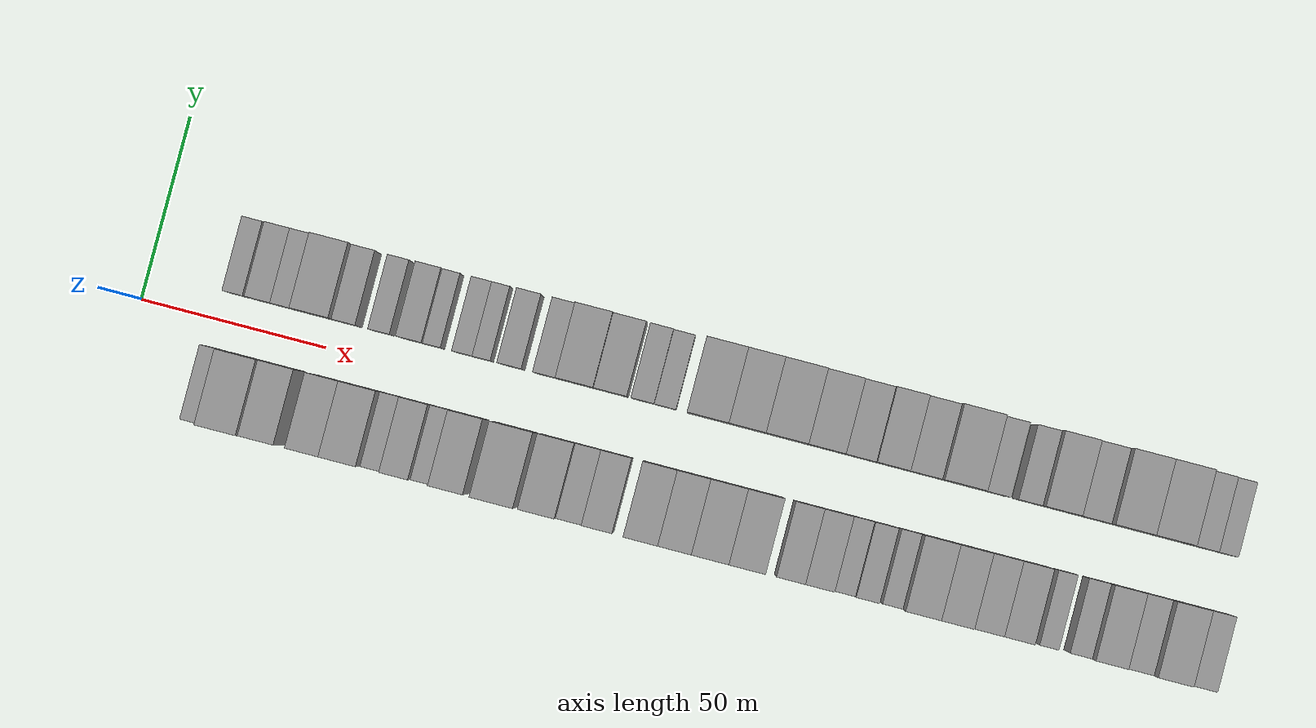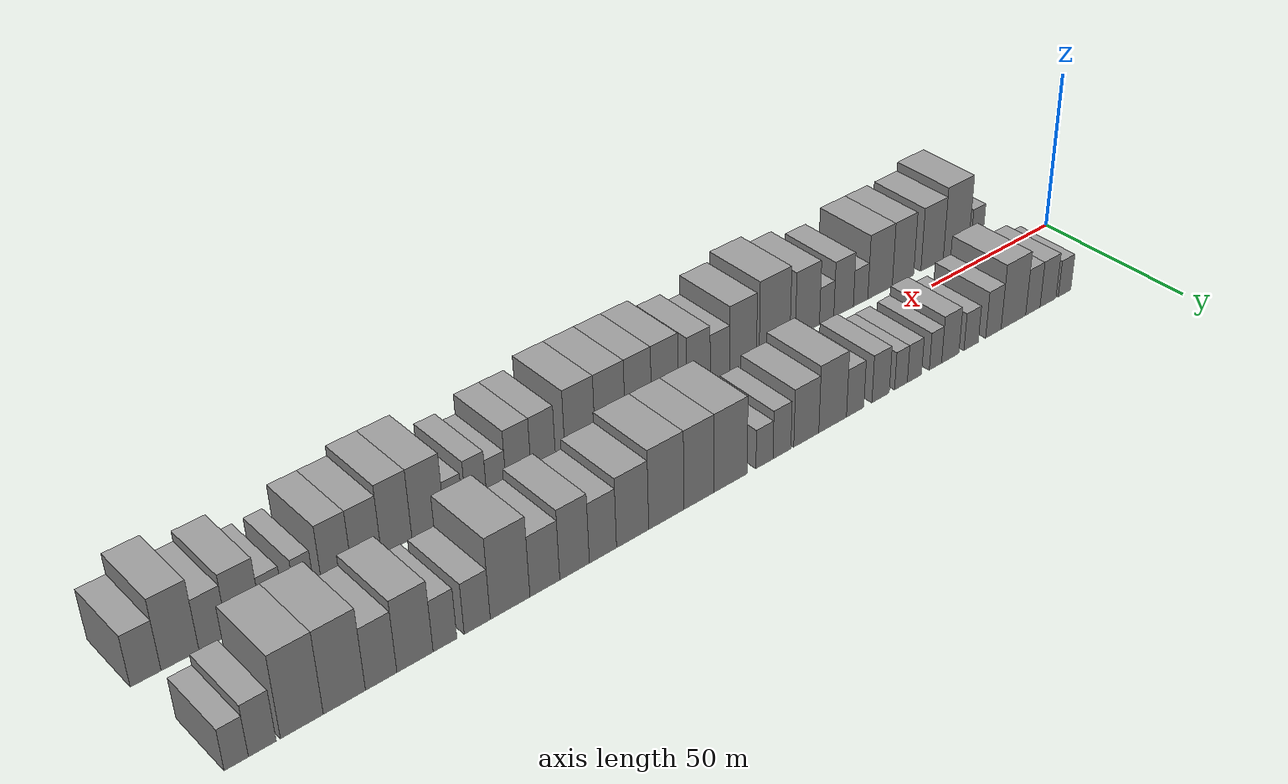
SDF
<sdf version="1.6">
 <world name="default">
  <scene>
   <sky><clouds><speed>12</speed></clouds></sky>
   <ambient>0.4 0.4 0.4 1</ambient>
   <background>0.7 0.7 0.7 1</background>
   <shadows>1</shadows>
  </scene>
  <gravity>0 0 -9.8066</gravity>
  <magnetic_field>6e-06 2.3e-05 -4.2e-05</magnetic_field>
  <physics default="0" name="default_physics" type="ode">
   <ode>
    <solver>
     <type>quick</type>
     <iters>10</iters>
     <sor>1.0</sor>
     <use_dynamic_moi_rescaling>0</use_dynamic_moi_rescaling>
    </solver>
    <constraints>
     <cfm>0</cfm>
     <erp>0.2</erp>
     <contact_max_correcting_vel>100</contact_max_correcting_vel>
     <contact_surface_layer>0.001</contact_surface_layer>
    </constraints>
   </ode>
   <max_step_size>0.004</max_step_size>
   <real_time_factor>1</real_time_factor>
   <real_time_update_rate>250</real_time_update_rate>
  </physics>
  <light name="sun" type="directional">
   <pose>0 0 10 0 0 0</pose>
   <diffuse>0.8 0.8 0.8 1</diffuse>
   <specular>0.2 0.2 0.2 1</specular>
   <attenuation>
    <range>1000</range>
    <constant>0.9</constant>
    <linear>0.01</linear>
    <quadratic>0.001</quadratic>
   </attenuation>
   <direction>-0.5 0.1 -0.9</direction>
  </light>
  <model name="building_1">
   <static>1</static>
   <pose>24.7441 17.5000 0 0.000000 0.000000 1.570796</pose>
   <link name="link">
    <pose>0 0 6.00 0 0 0</pose>
    <collision name="collision"><geometry><box><size>20.0000 5.4882 12.0000</size></box></geometry></collision>
    <visual name="visual">
     <cast_shadows>0</cast_shadows>
     <geometry><box><size>20.0000 5.4882 12.0000</size></box></geometry>
     <material>
      <script>
       <uri>model://grey_wall/materials/scripts</uri>
       <uri>model://grey_wall/materials/textures</uri>
       <name>vrc/grey_wall</name>
      </script>
     </material>
    </visual>
   </link>
  </model>
  <model name="building_2">
   <static>1</static>
   <pose>31.9171 17.5000 0 0.000000 0.000000 1.570796</pose>
   <link name="link">
    <pose>0 0 7.50 0 0 0</pose>
    <collision name="collision"><geometry><box><size>20.0000 6.8579 15.0000</size></box></geometry></collision>
    <visual name="visual">
     <cast_shadows>0</cast_shadows>
     <geometry><box><size>20.0000 6.8579 15.0000</size></box></geometry>
     <material>
      <script>
       <uri>model://grey_wall/materials/scripts</uri>
       <uri>model://grey_wall/materials/textures</uri>
       <name>vrc/grey_wall</name>
      </script>
     </material>
    </visual>
   </link>
  </model>
  <model name="building_3">
   <static>1</static>
   <pose>38.4035 17.5000 0 0.000000 0.000000 1.570796</pose>
   <link name="link">
    <pose>0 0 7.50 0 0 0</pose>
    <collision name="collision"><geometry><box><size>20.0000 6.1148 15.0000</size></box></geometry></collision>
    <visual name="visual">
     <cast_shadows>0</cast_shadows>
     <geometry><box><size>20.0000 6.1148 15.0000</size></box></geometry>
     <material>
      <script>
       <uri>model://grey_wall/materials/scripts</uri>
       <uri>model://grey_wall/materials/textures</uri>
       <name>vrc/grey_wall</name>
      </script>
     </material>
    </visual>
   </link>
  </model>
  <model name="building_4">
   <static>1</static>
   <pose>46.6071 17.5000 0 0.000000 0.000000 1.570796</pose>
   <link name="link">
    <pose>0 0 10.50 0 0 0</pose>
    <collision name="collision"><geometry><box><size>20.0000 10.2924 21.0000</size></box></geometry></collision>
    <visual name="visual">
     <cast_shadows>0</cast_shadows>
     <geometry><box><size>20.0000 10.2924 21.0000</size></box></geometry>
     <material>
      <script>
       <uri>model://grey_wall/materials/scripts</uri>
       <uri>model://grey_wall/materials/textures</uri>
       <name>vrc/grey_wall</name>
      </script>
     </material>
    </visual>
   </link>
  </model>
  <model name="building_5">
   <static>1</static>
   <pose>54.9240 17.5000 0 0.000000 0.000000 1.570796</pose>
   <link name="link">
    <pose>0 0 7.50 0 0 0</pose>
    <collision name="collision"><geometry><box><size>20.0000 6.3415 15.0000</size></box></geometry></collision>
    <visual name="visual">
     <cast_shadows>0</cast_shadows>
     <geometry><box><size>20.0000 6.3415 15.0000</size></box></geometry>
     <material>
      <script>
       <uri>model://grey_wall/materials/scripts</uri>
       <uri>model://grey_wall/materials/textures</uri>
       <name>vrc/grey_wall</name>
      </script>
     </material>
    </visual>
   </link>
  </model>
  <model name="building_6">
   <static>1</static>
   <pose>63.9920 17.5000 0 0.000000 0.000000 1.570796</pose>
   <link name="link">
    <pose>0 0 6.00 0 0 0</pose>
    <collision name="collision"><geometry><box><size>20.0000 5.7946 12.0000</size></box></geometry></collision>
    <visual name="visual">
     <cast_shadows>0</cast_shadows>
     <geometry><box><size>20.0000 5.7946 12.0000</size></box></geometry>
     <material>
      <script>
       <uri>model://grey_wall/materials/scripts</uri>
       <uri>model://grey_wall/materials/textures</uri>
       <name>vrc/grey_wall</name>
      </script>
     </material>
    </visual>
   </link>
  </model>
  <model name="building_7">
   <static>1</static>
   <pose>72.3332 17.5000 0 0.000000 0.000000 1.570796</pose>
   <link name="link">
    <pose>0 0 7.50 0 0 0</pose>
    <collision name="collision"><geometry><box><size>20.0000 6.8878 15.0000</size></box></geometry></collision>
    <visual name="visual">
     <cast_shadows>0</cast_shadows>
     <geometry><box><size>20.0000 6.8878 15.0000</size></box></geometry>
     <material>
      <script>
       <uri>model://grey_wall/materials/scripts</uri>
       <uri>model://grey_wall/materials/textures</uri>
       <name>vrc/grey_wall</name>
      </script>
     </material>
    </visual>
   </link>
  </model>
  <model name="building_8">
   <static>1</static>
   <pose>78.1854 17.5000 0 0.000000 0.000000 1.570796</pose>
   <link name="link">
    <pose>0 0 6.00 0 0 0</pose>
    <collision name="collision"><geometry><box><size>20.0000 4.8165 12.0000</size></box></geometry></collision>
    <visual name="visual">
     <cast_shadows>0</cast_shadows>
     <geometry><box><size>20.0000 4.8165 12.0000</size></box></geometry>
     <material>
      <script>
       <uri>model://grey_wall/materials/scripts</uri>
       <uri>model://grey_wall/materials/textures</uri>
       <name>vrc/grey_wall</name>
      </script>
     </material>
    </visual>
   </link>
  </model>
  <model name="building_9">
   <static>1</static>
   <pose>86.3414 17.5000 0 0.000000 0.000000 1.570796</pose>
   <link name="link">
    <pose>0 0 6.00 0 0 0</pose>
    <collision name="collision"><geometry><box><size>20.0000 5.4956 12.0000</size></box></geometry></collision>
    <visual name="visual">
     <cast_shadows>0</cast_shadows>
     <geometry><box><size>20.0000 5.4956 12.0000</size></box></geometry>
     <material>
      <script>
       <uri>model://grey_wall/materials/scripts</uri>
       <uri>model://grey_wall/materials/textures</uri>
       <name>vrc/grey_wall</name>
      </script>
     </material>
    </visual>
   </link>
  </model>
  <model name="building_10">
   <static>1</static>
   <pose>91.5210 17.5000 0 0.000000 0.000000 1.570796</pose>
   <link name="link">
    <pose>0 0 6.00 0 0 0</pose>
    <collision name="collision"><geometry><box><size>20.0000 4.8635 12.0000</size></box></geometry></collision>
    <visual name="visual">
     <cast_shadows>0</cast_shadows>
     <geometry><box><size>20.0000 4.8635 12.0000</size></box></geometry>
     <material>
      <script>
       <uri>model://grey_wall/materials/scripts</uri>
       <uri>model://grey_wall/materials/textures</uri>
       <name>vrc/grey_wall</name>
      </script>
     </material>
    </visual>
   </link>
  </model>
  <model name="building_11">
   <static>1</static>
   <pose>99.2173 17.5000 0 0.000000 0.000000 1.570796</pose>
   <link name="link">
    <pose>0 0 7.50 0 0 0</pose>
    <collision name="collision"><geometry><box><size>20.0000 6.5292 15.0000</size></box></geometry></collision>
    <visual name="visual">
     <cast_shadows>0</cast_shadows>
     <geometry><box><size>20.0000 6.5292 15.0000</size></box></geometry>
     <material>
      <script>
       <uri>model://grey_wall/materials/scripts</uri>
       <uri>model://grey_wall/materials/textures</uri>
       <name>vrc/grey_wall</name>
      </script>
     </material>
    </visual>
   </link>
  </model>
  <model name="building_12">
   <static>1</static>
   <pose>108.6704 17.5000 0 0.000000 0.000000 1.570796</pose>
   <link name="link">
    <pose>0 0 7.50 0 0 0</pose>
    <collision name="collision"><geometry><box><size>20.0000 6.3769 15.0000</size></box></geometry></collision>
    <visual name="visual">
     <cast_shadows>0</cast_shadows>
     <geometry><box><size>20.0000 6.3769 15.0000</size></box></geometry>
     <material>
      <script>
       <uri>model://grey_wall/materials/scripts</uri>
       <uri>model://grey_wall/materials/textures</uri>
       <name>vrc/grey_wall</name>
      </script>
     </material>
    </visual>
   </link>
  </model>
  <model name="building_13">
   <static>1</static>
   <pose>116.8591 17.5000 0 0.000000 0.000000 1.570796</pose>
   <link name="link">
    <pose>0 0 10.50 0 0 0</pose>
    <collision name="collision"><geometry><box><size>20.0000 10.0005 21.0000</size></box></geometry></collision>
    <visual name="visual">
     <cast_shadows>0</cast_shadows>
     <geometry><box><size>20.0000 10.0005 21.0000</size></box></geometry>
     <material>
      <script>
       <uri>model://grey_wall/materials/scripts</uri>
       <uri>model://grey_wall/materials/textures</uri>
       <name>vrc/grey_wall</name>
      </script>
     </material>
    </visual>
   </link>
  </model>
  <model name="building_14">
   <static>1</static>
   <pose>126.2873 17.5000 0 0.000000 0.000000 1.570796</pose>
   <link name="link">
    <pose>0 0 9.00 0 0 0</pose>
    <collision name="collision"><geometry><box><size>20.0000 8.8560 18.0000</size></box></geometry></collision>
    <visual name="visual">
     <cast_shadows>0</cast_shadows>
     <geometry><box><size>20.0000 8.8560 18.0000</size></box></geometry>
     <material>
      <script>
       <uri>model://grey_wall/materials/scripts</uri>
       <uri>model://grey_wall/materials/textures</uri>
       <name>vrc/grey_wall</name>
      </script>
     </material>
    </visual>
   </link>
  </model>
  <model name="building_15">
   <static>1</static>
   <pose>134.8201 17.5000 0 0.000000 0.000000 1.570796</pose>
   <link name="link">
    <pose>0 0 7.50 0 0 0</pose>
    <collision name="collision"><geometry><box><size>20.0000 6.2095 15.0000</size></box></geometry></collision>
    <visual name="visual">
     <cast_shadows>0</cast_shadows>
     <geometry><box><size>20.0000 6.2095 15.0000</size></box></geometry>
     <material>
      <script>
       <uri>model://grey_wall/materials/scripts</uri>
       <uri>model://grey_wall/materials/textures</uri>
       <name>vrc/grey_wall</name>
      </script>
     </material>
    </visual>
   </link>
  </model>
  <model name="building_16">
   <static>1</static>
   <pose>140.8430 17.5000 0 0.000000 0.000000 1.570796</pose>
   <link name="link">
    <pose>0 0 6.00 0 0 0</pose>
    <collision name="collision"><geometry><box><size>20.0000 5.8364 12.0000</size></box></geometry></collision>
    <visual name="visual">
     <cast_shadows>0</cast_shadows>
     <geometry><box><size>20.0000 5.8364 12.0000</size></box></geometry>
     <material>
      <script>
       <uri>model://grey_wall/materials/scripts</uri>
       <uri>model://grey_wall/materials/textures</uri>
       <name>vrc/grey_wall</name>
      </script>
     </material>
    </visual>
   </link>
  </model>
  <model name="building_17">
   <static>1</static>
   <pose>152.2762 17.5000 0 0.000000 0.000000 1.570796</pose>
   <link name="link">
    <pose>0 0 12.00 0 0 0</pose>
    <collision name="collision"><geometry><box><size>20.0000 11.0300 24.0000</size></box></geometry></collision>
    <visual name="visual">
     <cast_shadows>0</cast_shadows>
     <geometry><box><size>20.0000 11.0300 24.0000</size></box></geometry>
     <material>
      <script>
       <uri>model://grey_wall/materials/scripts</uri>
       <uri>model://grey_wall/materials/textures</uri>
       <name>vrc/grey_wall</name>
      </script>
     </material>
    </visual>
   </link>
  </model>
  <model name="building_18">
   <static>1</static>
   <pose>162.6787 17.5000 0 0.000000 0.000000 1.570796</pose>
   <link name="link">
    <pose>0 0 12.00 0 0 0</pose>
    <collision name="collision"><geometry><box><size>20.0000 9.7751 24.0000</size></box></geometry></collision>
    <visual name="visual">
     <cast_shadows>0</cast_shadows>
     <geometry><box><size>20.0000 9.7751 24.0000</size></box></geometry>
     <material>
      <script>
       <uri>model://grey_wall/materials/scripts</uri>
       <uri>model://grey_wall/materials/textures</uri>
       <name>vrc/grey_wall</name>
      </script>
     </material>
    </visual>
   </link>
  </model>
  <model name="building_19">
   <static>1</static>
   <pose>173.1793 17.5000 0 0.000000 0.000000 1.570796</pose>
   <link name="link">
    <pose>0 0 12.00 0 0 0</pose>
    <collision name="collision"><geometry><box><size>20.0000 11.2261 24.0000</size></box></geometry></collision>
    <visual name="visual">
     <cast_shadows>0</cast_shadows>
     <geometry><box><size>20.0000 11.2261 24.0000</size></box></geometry>
     <material>
      <script>
       <uri>model://grey_wall/materials/scripts</uri>
       <uri>model://grey_wall/materials/textures</uri>
       <name>vrc/grey_wall</name>
      </script>
     </material>
    </visual>
   </link>
  </model>
  <model name="building_20">
   <static>1</static>
   <pose>183.7918 17.5000 0 0.000000 0.000000 1.570796</pose>
   <link name="link">
    <pose>0 0 10.50 0 0 0</pose>
    <collision name="collision"><geometry><box><size>20.0000 9.9990 21.0000</size></box></geometry></collision>
    <visual name="visual">
     <cast_shadows>0</cast_shadows>
     <geometry><box><size>20.0000 9.9990 21.0000</size></box></geometry>
     <material>
      <script>
       <uri>model://grey_wall/materials/scripts</uri>
       <uri>model://grey_wall/materials/textures</uri>
       <name>vrc/grey_wall</name>
      </script>
     </material>
    </visual>
   </link>
  </model>
  <model name="building_21">
   <static>1</static>
   <pose>192.9205 17.5000 0 0.000000 0.000000 1.570796</pose>
   <link name="link">
    <pose>0 0 9.00 0 0 0</pose>
    <collision name="collision"><geometry><box><size>20.0000 8.2584 18.0000</size></box></geometry></collision>
    <visual name="visual">
     <cast_shadows>0</cast_shadows>
     <geometry><box><size>20.0000 8.2584 18.0000</size></box></geometry>
     <material>
      <script>
       <uri>model://grey_wall/materials/scripts</uri>
       <uri>model://grey_wall/materials/textures</uri>
       <name>vrc/grey_wall</name>
      </script>
     </material>
    </visual>
   </link>
  </model>
  <model name="building_22">
   <static>1</static>
   <pose>201.4533 17.5000 0 0.000000 0.000000 1.570796</pose>
   <link name="link">
    <pose>0 0 10.50 0 0 0</pose>
    <collision name="collision"><geometry><box><size>20.0000 8.8072 21.0000</size></box></geometry></collision>
    <visual name="visual">
     <cast_shadows>0</cast_shadows>
     <geometry><box><size>20.0000 8.8072 21.0000</size></box></geometry>
     <material>
      <script>
       <uri>model://grey_wall/materials/scripts</uri>
       <uri>model://grey_wall/materials/textures</uri>
       <name>vrc/grey_wall</name>
      </script>
     </material>
    </visual>
   </link>
  </model>
  <model name="building_23">
   <static>1</static>
   <pose>210.2037 17.5000 0 0.000000 0.000000 1.570796</pose>
   <link name="link">
    <pose>0 0 9.00 0 0 0</pose>
    <collision name="collision"><geometry><box><size>20.0000 8.6935 18.0000</size></box></geometry></collision>
    <visual name="visual">
     <cast_shadows>0</cast_shadows>
     <geometry><box><size>20.0000 8.6935 18.0000</size></box></geometry>
     <material>
      <script>
       <uri>model://grey_wall/materials/scripts</uri>
       <uri>model://grey_wall/materials/textures</uri>
       <name>vrc/grey_wall</name>
      </script>
     </material>
    </visual>
   </link>
  </model>
  <model name="building_24">
   <static>1</static>
   <pose>220.1891 17.5000 0 0.000000 0.000000 1.570796</pose>
   <link name="link">
    <pose>0 0 12.00 0 0 0</pose>
    <collision name="collision"><geometry><box><size>20.0000 11.2774 24.0000</size></box></geometry></collision>
    <visual name="visual">
     <cast_shadows>0</cast_shadows>
     <geometry><box><size>20.0000 11.2774 24.0000</size></box></geometry>
     <material>
      <script>
       <uri>model://grey_wall/materials/scripts</uri>
       <uri>model://grey_wall/materials/textures</uri>
       <name>vrc/grey_wall</name>
      </script>
     </material>
    </visual>
   </link>
  </model>
  <model name="building_25">
   <static>1</static>
   <pose>229.4601 17.5000 0 0.000000 0.000000 1.570796</pose>
   <link name="link">
    <pose>0 0 7.50 0 0 0</pose>
    <collision name="collision"><geometry><box><size>20.0000 7.2645 15.0000</size></box></geometry></collision>
    <visual name="visual">
     <cast_shadows>0</cast_shadows>
     <geometry><box><size>20.0000 7.2645 15.0000</size></box></geometry>
     <material>
      <script>
       <uri>model://grey_wall/materials/scripts</uri>
       <uri>model://grey_wall/materials/textures</uri>
       <name>vrc/grey_wall</name>
      </script>
     </material>
    </visual>
   </link>
  </model>
  <model name="building_26">
   <static>1</static>
   <pose>238.3251 17.5000 0 0.000000 0.000000 1.570796</pose>
   <link name="link">
    <pose>0 0 7.50 0 0 0</pose>
    <collision name="collision"><geometry><box><size>20.0000 6.4654 15.0000</size></box></geometry></collision>
    <visual name="visual">
     <cast_shadows>0</cast_shadows>
     <geometry><box><size>20.0000 6.4654 15.0000</size></box></geometry>
     <material>
      <script>
       <uri>model://grey_wall/materials/scripts</uri>
       <uri>model://grey_wall/materials/textures</uri>
       <name>vrc/grey_wall</name>
      </script>
     </material>
    </visual>
   </link>
  </model>
  <model name="building_27">
   <static>1</static>
   <pose>246.3901 17.5000 0 0.000000 0.000000 1.570796</pose>
   <link name="link">
    <pose>0 0 10.50 0 0 0</pose>
    <collision name="collision"><geometry><box><size>20.0000 9.6647 21.0000</size></box></geometry></collision>
    <visual name="visual">
     <cast_shadows>0</cast_shadows>
     <geometry><box><size>20.0000 9.6647 21.0000</size></box></geometry>
     <material>
      <script>
       <uri>model://grey_wall/materials/scripts</uri>
       <uri>model://grey_wall/materials/textures</uri>
       <name>vrc/grey_wall</name>
      </script>
     </material>
    </visual>
   </link>
  </model>
  <model name="building_28">
   <static>1</static>
   <pose>255.3139 17.5000 0 0.000000 0.000000 1.570796</pose>
   <link name="link">
    <pose>0 0 9.00 0 0 0</pose>
    <collision name="collision"><geometry><box><size>20.0000 8.1829 18.0000</size></box></geometry></collision>
    <visual name="visual">
     <cast_shadows>0</cast_shadows>
     <geometry><box><size>20.0000 8.1829 18.0000</size></box></geometry>
     <material>
      <script>
       <uri>model://grey_wall/materials/scripts</uri>
       <uri>model://grey_wall/materials/textures</uri>
       <name>vrc/grey_wall</name>
      </script>
     </material>
    </visual>
   </link>
  </model>
  <model name="building_29">
   <static>1</static>
   <pose>264.7660 17.5000 0 0.000000 0.000000 1.570796</pose>
   <link name="link">
    <pose>0 0 12.00 0 0 0</pose>
    <collision name="collision"><geometry><box><size>20.0000 10.7212 24.0000</size></box></geometry></collision>
    <visual name="visual">
     <cast_shadows>0</cast_shadows>
     <geometry><box><size>20.0000 10.7212 24.0000</size></box></geometry>
     <material>
      <script>
       <uri>model://grey_wall/materials/scripts</uri>
       <uri>model://grey_wall/materials/textures</uri>
       <name>vrc/grey_wall</name>
      </script>
     </material>
    </visual>
   </link>
  </model>
  <model name="building_30">
   <static>1</static>
   <pose>275.4392 17.5000 0 0.000000 0.000000 1.570796</pose>
   <link name="link">
    <pose>0 0 12.00 0 0 0</pose>
    <collision name="collision"><geometry><box><size>20.0000 10.6250 24.0000</size></box></geometry></collision>
    <visual name="visual">
     <cast_shadows>0</cast_shadows>
     <geometry><box><size>20.0000 10.6250 24.0000</size></box></geometry>
     <material>
      <script>
       <uri>model://grey_wall/materials/scripts</uri>
       <uri>model://grey_wall/materials/textures</uri>
       <name>vrc/grey_wall</name>
      </script>
     </material>
    </visual>
   </link>
  </model>
  <model name="building_31">
   <static>1</static>
   <pose>285.1096 17.5000 0 0.000000 0.000000 1.570796</pose>
   <link name="link">
    <pose>0 0 7.50 0 0 0</pose>
    <collision name="collision"><geometry><box><size>20.0000 6.7159 15.0000</size></box></geometry></collision>
    <visual name="visual">
     <cast_shadows>0</cast_shadows>
     <geometry><box><size>20.0000 6.7159 15.0000</size></box></geometry>
     <material>
      <script>
       <uri>model://grey_wall/materials/scripts</uri>
       <uri>model://grey_wall/materials/textures</uri>
       <name>vrc/grey_wall</name>
      </script>
     </material>
    </visual>
   </link>
  </model>
  <model name="building_32">
   <static>1</static>
   <pose>291.3562 17.5000 0 0.000000 0.000000 1.570796</pose>
   <link name="link">
    <pose>0 0 6.00 0 0 0</pose>
    <collision name="collision"><geometry><box><size>20.0000 5.7774 12.0000</size></box></geometry></collision>
    <visual name="visual">
     <cast_shadows>0</cast_shadows>
     <geometry><box><size>20.0000 5.7774 12.0000</size></box></geometry>
     <material>
      <script>
       <uri>model://grey_wall/materials/scripts</uri>
       <uri>model://grey_wall/materials/textures</uri>
       <name>vrc/grey_wall</name>
      </script>
     </material>
    </visual>
   </link>
  </model>
  <model name="building_33">
   <static>1</static>
   <pose>22.6224 -17.5000 0 0.000000 0.000000 1.570796</pose>
   <link name="link">
    <pose>0 0 6.00 0 0 0</pose>
    <collision name="collision"><geometry><box><size>20.0000 5.2447 12.0000</size></box></geometry></collision>
    <visual name="visual">
     <cast_shadows>0</cast_shadows>
     <geometry><box><size>20.0000 5.2447 12.0000</size></box></geometry>
     <material>
      <script>
       <uri>model://grey_wall/materials/scripts</uri>
       <uri>model://grey_wall/materials/textures</uri>
       <name>vrc/grey_wall</name>
      </script>
     </material>
    </visual>
   </link>
  </model>
  <model name="building_34">
   <static>1</static>
   <pose>31.6956 -17.5000 0 0.000000 0.000000 1.570796</pose>
   <link name="link">
    <pose>0 0 12.00 0 0 0</pose>
    <collision name="collision"><geometry><box><size>20.0000 10.9018 24.0000</size></box></geometry></collision>
    <visual name="visual">
     <cast_shadows>0</cast_shadows>
     <geometry><box><size>20.0000 10.9018 24.0000</size></box></geometry>
     <material>
      <script>
       <uri>model://grey_wall/materials/scripts</uri>
       <uri>model://grey_wall/materials/textures</uri>
       <name>vrc/grey_wall</name>
      </script>
     </material>
    </visual>
   </link>
  </model>
  <model name="building_35">
   <static>1</static>
   <pose>41.8701 -17.5000 0 0.000000 0.000000 1.570796</pose>
   <link name="link">
    <pose>0 0 10.50 0 0 0</pose>
    <collision name="collision"><geometry><box><size>20.0000 9.4472 21.0000</size></box></geometry></collision>
    <visual name="visual">
     <cast_shadows>0</cast_shadows>
     <geometry><box><size>20.0000 9.4472 21.0000</size></box></geometry>
     <material>
      <script>
       <uri>model://grey_wall/materials/scripts</uri>
       <uri>model://grey_wall/materials/textures</uri>
       <name>vrc/grey_wall</name>
      </script>
     </material>
    </visual>
   </link>
  </model>
  <model name="building_36">
   <static>1</static>
   <pose>54.0088 -17.5000 0 0.000000 0.000000 1.570796</pose>
   <link name="link">
    <pose>0 0 10.50 0 0 0</pose>
    <collision name="collision"><geometry><box><size>20.0000 8.8303 21.0000</size></box></geometry></collision>
    <visual name="visual">
     <cast_shadows>0</cast_shadows>
     <geometry><box><size>20.0000 8.8303 21.0000</size></box></geometry>
     <material>
      <script>
       <uri>model://grey_wall/materials/scripts</uri>
       <uri>model://grey_wall/materials/textures</uri>
       <name>vrc/grey_wall</name>
      </script>
     </material>
    </visual>
   </link>
  </model>
  <model name="building_37">
   <static>1</static>
   <pose>63.3813 -17.5000 0 0.000000 0.000000 1.570796</pose>
   <link name="link">
    <pose>0 0 10.50 0 0 0</pose>
    <collision name="collision"><geometry><box><size>20.0000 9.9147 21.0000</size></box></geometry></collision>
    <visual name="visual">
     <cast_shadows>0</cast_shadows>
     <geometry><box><size>20.0000 9.9147 21.0000</size></box></geometry>
     <material>
      <script>
       <uri>model://grey_wall/materials/scripts</uri>
       <uri>model://grey_wall/materials/textures</uri>
       <name>vrc/grey_wall</name>
      </script>
     </material>
    </visual>
   </link>
  </model>
  <model name="building_38">
   <static>1</static>
   <pose>71.2271 -17.5000 0 0.000000 0.000000 1.570796</pose>
   <link name="link">
    <pose>0 0 6.00 0 0 0</pose>
    <collision name="collision"><geometry><box><size>20.0000 5.7768 12.0000</size></box></geometry></collision>
    <visual name="visual">
     <cast_shadows>0</cast_shadows>
     <geometry><box><size>20.0000 5.7768 12.0000</size></box></geometry>
     <material>
      <script>
       <uri>model://grey_wall/materials/scripts</uri>
       <uri>model://grey_wall/materials/textures</uri>
       <name>vrc/grey_wall</name>
      </script>
     </material>
    </visual>
   </link>
  </model>
  <model name="building_39">
   <static>1</static>
   <pose>77.9601 -17.5000 0 0.000000 0.000000 1.570796</pose>
   <link name="link">
    <pose>0 0 9.00 0 0 0</pose>
    <collision name="collision"><geometry><box><size>20.0000 7.6892 18.0000</size></box></geometry></collision>
    <visual name="visual">
     <cast_shadows>0</cast_shadows>
     <geometry><box><size>20.0000 7.6892 18.0000</size></box></geometry>
     <material>
      <script>
       <uri>model://grey_wall/materials/scripts</uri>
       <uri>model://grey_wall/materials/textures</uri>
       <name>vrc/grey_wall</name>
      </script>
     </material>
    </visual>
   </link>
  </model>
  <model name="building_40">
   <static>1</static>
   <pose>84.5954 -17.5000 0 0.000000 0.000000 1.570796</pose>
   <link name="link">
    <pose>0 0 6.00 0 0 0</pose>
    <collision name="collision"><geometry><box><size>20.0000 5.5814 12.0000</size></box></geometry></collision>
    <visual name="visual">
     <cast_shadows>0</cast_shadows>
     <geometry><box><size>20.0000 5.5814 12.0000</size></box></geometry>
     <material>
      <script>
       <uri>model://grey_wall/materials/scripts</uri>
       <uri>model://grey_wall/materials/textures</uri>
       <name>vrc/grey_wall</name>
      </script>
     </material>
    </visual>
   </link>
  </model>
  <model name="building_41">
   <static>1</static>
   <pose>92.0124 -17.5000 0 0.000000 0.000000 1.570796</pose>
   <link name="link">
    <pose>0 0 10.50 0 0 0</pose>
    <collision name="collision"><geometry><box><size>20.0000 9.2526 21.0000</size></box></geometry></collision>
    <visual name="visual">
     <cast_shadows>0</cast_shadows>
     <geometry><box><size>20.0000 9.2526 21.0000</size></box></geometry>
     <material>
      <script>
       <uri>model://grey_wall/materials/scripts</uri>
       <uri>model://grey_wall/materials/textures</uri>
       <name>vrc/grey_wall</name>
      </script>
     </material>
    </visual>
   </link>
  </model>
  <model name="building_42">
   <static>1</static>
   <pose>104.3696 -17.5000 0 0.000000 0.000000 1.570796</pose>
   <link name="link">
    <pose>0 0 12.00 0 0 0</pose>
    <collision name="collision"><geometry><box><size>20.0000 11.4618 24.0000</size></box></geometry></collision>
    <visual name="visual">
     <cast_shadows>0</cast_shadows>
     <geometry><box><size>20.0000 11.4618 24.0000</size></box></geometry>
     <material>
      <script>
       <uri>model://grey_wall/materials/scripts</uri>
       <uri>model://grey_wall/materials/textures</uri>
       <name>vrc/grey_wall</name>
      </script>
     </material>
    </visual>
   </link>
  </model>
  <model name="building_43">
   <static>1</static>
   <pose>115.9796 -17.5000 0 0.000000 0.000000 1.570796</pose>
   <link name="link">
    <pose>0 0 10.50 0 0 0</pose>
    <collision name="collision"><geometry><box><size>20.0000 9.7583 21.0000</size></box></geometry></collision>
    <visual name="visual">
     <cast_shadows>0</cast_shadows>
     <geometry><box><size>20.0000 9.7583 21.0000</size></box></geometry>
     <material>
      <script>
       <uri>model://grey_wall/materials/scripts</uri>
       <uri>model://grey_wall/materials/textures</uri>
       <name>vrc/grey_wall</name>
      </script>
     </material>
    </visual>
   </link>
  </model>
  <model name="building_44">
   <static>1</static>
   <pose>124.3408 -17.5000 0 0.000000 0.000000 1.570796</pose>
   <link name="link">
    <pose>0 0 7.50 0 0 0</pose>
    <collision name="collision"><geometry><box><size>20.0000 6.9640 15.0000</size></box></geometry></collision>
    <visual name="visual">
     <cast_shadows>0</cast_shadows>
     <geometry><box><size>20.0000 6.9640 15.0000</size></box></geometry>
     <material>
      <script>
       <uri>model://grey_wall/materials/scripts</uri>
       <uri>model://grey_wall/materials/textures</uri>
       <name>vrc/grey_wall</name>
      </script>
     </material>
    </visual>
   </link>
  </model>
  <model name="building_45">
   <static>1</static>
   <pose>131.9152 -17.5000 0 0.000000 0.000000 1.570796</pose>
   <link name="link">
    <pose>0 0 9.00 0 0 0</pose>
    <collision name="collision"><geometry><box><size>20.0000 8.1847 18.0000</size></box></geometry></collision>
    <visual name="visual">
     <cast_shadows>0</cast_shadows>
     <geometry><box><size>20.0000 8.1847 18.0000</size></box></geometry>
     <material>
      <script>
       <uri>model://grey_wall/materials/scripts</uri>
       <uri>model://grey_wall/materials/textures</uri>
       <name>vrc/grey_wall</name>
      </script>
     </material>
    </visual>
   </link>
  </model>
  <model name="building_46">
   <static>1</static>
   <pose>143.5770 -17.5000 0 0.000000 0.000000 1.570796</pose>
   <link name="link">
    <pose>0 0 10.50 0 0 0</pose>
    <collision name="collision"><geometry><box><size>20.0000 9.1390 21.0000</size></box></geometry></collision>
    <visual name="visual">
     <cast_shadows>0</cast_shadows>
     <geometry><box><size>20.0000 9.1390 21.0000</size></box></geometry>
     <material>
      <script>
       <uri>model://grey_wall/materials/scripts</uri>
       <uri>model://grey_wall/materials/textures</uri>
       <name>vrc/grey_wall</name>
      </script>
     </material>
    </visual>
   </link>
  </model>
  <model name="building_47">
   <static>1</static>
   <pose>152.5886 -17.5000 0 0.000000 0.000000 1.570796</pose>
   <link name="link">
    <pose>0 0 10.50 0 0 0</pose>
    <collision name="collision"><geometry><box><size>20.0000 8.8843 21.0000</size></box></geometry></collision>
    <visual name="visual">
     <cast_shadows>0</cast_shadows>
     <geometry><box><size>20.0000 8.8843 21.0000</size></box></geometry>
     <material>
      <script>
       <uri>model://grey_wall/materials/scripts</uri>
       <uri>model://grey_wall/materials/textures</uri>
       <name>vrc/grey_wall</name>
      </script>
     </material>
    </visual>
   </link>
  </model>
  <model name="building_48">
   <static>1</static>
   <pose>161.9919 -17.5000 0 0.000000 0.000000 1.570796</pose>
   <link name="link">
    <pose>0 0 10.50 0 0 0</pose>
    <collision name="collision"><geometry><box><size>20.0000 9.9223 21.0000</size></box></geometry></collision>
    <visual name="visual">
     <cast_shadows>0</cast_shadows>
     <geometry><box><size>20.0000 9.9223 21.0000</size></box></geometry>
     <material>
      <script>
       <uri>model://grey_wall/materials/scripts</uri>
       <uri>model://grey_wall/materials/textures</uri>
       <name>vrc/grey_wall</name>
      </script>
     </material>
    </visual>
   </link>
  </model>
  <model name="building_49">
   <static>1</static>
   <pose>171.8002 -17.5000 0 0.000000 0.000000 1.570796</pose>
   <link name="link">
    <pose>0 0 10.50 0 0 0</pose>
    <collision name="collision"><geometry><box><size>20.0000 9.6943 21.0000</size></box></geometry></collision>
    <visual name="visual">
     <cast_shadows>0</cast_shadows>
     <geometry><box><size>20.0000 9.6943 21.0000</size></box></geometry>
     <material>
      <script>
       <uri>model://grey_wall/materials/scripts</uri>
       <uri>model://grey_wall/materials/textures</uri>
       <name>vrc/grey_wall</name>
      </script>
     </material>
    </visual>
   </link>
  </model>
  <model name="building_50">
   <static>1</static>
   <pose>183.4804 -17.5000 0 0.000000 0.000000 1.570796</pose>
   <link name="link">
    <pose>0 0 9.00 0 0 0</pose>
    <collision name="collision"><geometry><box><size>20.0000 7.6661 18.0000</size></box></geometry></collision>
    <visual name="visual">
     <cast_shadows>0</cast_shadows>
     <geometry><box><size>20.0000 7.6661 18.0000</size></box></geometry>
     <material>
      <script>
       <uri>model://grey_wall/materials/scripts</uri>
       <uri>model://grey_wall/materials/textures</uri>
       <name>vrc/grey_wall</name>
      </script>
     </material>
    </visual>
   </link>
  </model>
  <model name="building_51">
   <static>1</static>
   <pose>191.1825 -17.5000 0 0.000000 0.000000 1.570796</pose>
   <link name="link">
    <pose>0 0 9.00 0 0 0</pose>
    <collision name="collision"><geometry><box><size>20.0000 7.7380 18.0000</size></box></geometry></collision>
    <visual name="visual">
     <cast_shadows>0</cast_shadows>
     <geometry><box><size>20.0000 7.7380 18.0000</size></box></geometry>
     <material>
      <script>
       <uri>model://grey_wall/materials/scripts</uri>
       <uri>model://grey_wall/materials/textures</uri>
       <name>vrc/grey_wall</name>
      </script>
     </material>
    </visual>
   </link>
  </model>
  <model name="building_52">
   <static>1</static>
   <pose>198.0008 -17.5000 0 0.000000 0.000000 1.570796</pose>
   <link name="link">
    <pose>0 0 6.00 0 0 0</pose>
    <collision name="collision"><geometry><box><size>20.0000 5.8988 12.0000</size></box></geometry></collision>
    <visual name="visual">
     <cast_shadows>0</cast_shadows>
     <geometry><box><size>20.0000 5.8988 12.0000</size></box></geometry>
     <material>
      <script>
       <uri>model://grey_wall/materials/scripts</uri>
       <uri>model://grey_wall/materials/textures</uri>
       <name>vrc/grey_wall</name>
      </script>
     </material>
    </visual>
   </link>
  </model>
  <model name="building_53">
   <static>1</static>
   <pose>204.0753 -17.5000 0 0.000000 0.000000 1.570796</pose>
   <link name="link">
    <pose>0 0 7.50 0 0 0</pose>
    <collision name="collision"><geometry><box><size>20.0000 6.2501 15.0000</size></box></geometry></collision>
    <visual name="visual">
     <cast_shadows>0</cast_shadows>
     <geometry><box><size>20.0000 6.2501 15.0000</size></box></geometry>
     <material>
      <script>
       <uri>model://grey_wall/materials/scripts</uri>
       <uri>model://grey_wall/materials/textures</uri>
       <name>vrc/grey_wall</name>
      </script>
     </material>
    </visual>
   </link>
  </model>
  <model name="building_54">
   <static>1</static>
   <pose>210.9103 -17.5000 0 0.000000 0.000000 1.570796</pose>
   <link name="link">
    <pose>0 0 6.00 0 0 0</pose>
    <collision name="collision"><geometry><box><size>20.0000 5.4200 12.0000</size></box></geometry></collision>
    <visual name="visual">
     <cast_shadows>0</cast_shadows>
     <geometry><box><size>20.0000 5.4200 12.0000</size></box></geometry>
     <material>
      <script>
       <uri>model://grey_wall/materials/scripts</uri>
       <uri>model://grey_wall/materials/textures</uri>
       <name>vrc/grey_wall</name>
      </script>
     </material>
    </visual>
   </link>
  </model>
  <model name="building_55">
   <static>1</static>
   <pose>218.3351 -17.5000 0 0.000000 0.000000 1.570796</pose>
   <link name="link">
    <pose>0 0 10.50 0 0 0</pose>
    <collision name="collision"><geometry><box><size>20.0000 9.4296 21.0000</size></box></geometry></collision>
    <visual name="visual">
     <cast_shadows>0</cast_shadows>
     <geometry><box><size>20.0000 9.4296 21.0000</size></box></geometry>
     <material>
      <script>
       <uri>model://grey_wall/materials/scripts</uri>
       <uri>model://grey_wall/materials/textures</uri>
       <name>vrc/grey_wall</name>
      </script>
     </material>
    </visual>
   </link>
  </model>
  <model name="building_56">
   <static>1</static>
   <pose>227.3933 -17.5000 0 0.000000 0.000000 1.570796</pose>
   <link name="link">
    <pose>0 0 10.50 0 0 0</pose>
    <collision name="collision"><geometry><box><size>20.0000 8.6869 21.0000</size></box></geometry></collision>
    <visual name="visual">
     <cast_shadows>0</cast_shadows>
     <geometry><box><size>20.0000 8.6869 21.0000</size></box></geometry>
     <material>
      <script>
       <uri>model://grey_wall/materials/scripts</uri>
       <uri>model://grey_wall/materials/textures</uri>
       <name>vrc/grey_wall</name>
      </script>
     </material>
    </visual>
   </link>
  </model>
  <model name="building_57">
   <static>1</static>
   <pose>235.8805 -17.5000 0 0.000000 0.000000 1.570796</pose>
   <link name="link">
    <pose>0 0 9.00 0 0 0</pose>
    <collision name="collision"><geometry><box><size>20.0000 8.2874 18.0000</size></box></geometry></collision>
    <visual name="visual">
     <cast_shadows>0</cast_shadows>
     <geometry><box><size>20.0000 8.2874 18.0000</size></box></geometry>
     <material>
      <script>
       <uri>model://grey_wall/materials/scripts</uri>
       <uri>model://grey_wall/materials/textures</uri>
       <name>vrc/grey_wall</name>
      </script>
     </material>
    </visual>
   </link>
  </model>
  <model name="building_58">
   <static>1</static>
   <pose>244.0837 -17.5000 0 0.000000 0.000000 1.570796</pose>
   <link name="link">
    <pose>0 0 9.00 0 0 0</pose>
    <collision name="collision"><geometry><box><size>20.0000 8.1191 18.0000</size></box></geometry></collision>
    <visual name="visual">
     <cast_shadows>0</cast_shadows>
     <geometry><box><size>20.0000 8.1191 18.0000</size></box></geometry>
     <material>
      <script>
       <uri>model://grey_wall/materials/scripts</uri>
       <uri>model://grey_wall/materials/textures</uri>
       <name>vrc/grey_wall</name>
      </script>
     </material>
    </visual>
   </link>
  </model>
  <model name="building_59">
   <static>1</static>
   <pose>252.7217 -17.5000 0 0.000000 0.000000 1.570796</pose>
   <link name="link">
    <pose>0 0 6.00 0 0 0</pose>
    <collision name="collision"><geometry><box><size>20.0000 5.1569 12.0000</size></box></geometry></collision>
    <visual name="visual">
     <cast_shadows>0</cast_shadows>
     <geometry><box><size>20.0000 5.1569 12.0000</size></box></geometry>
     <material>
      <script>
       <uri>model://grey_wall/materials/scripts</uri>
       <uri>model://grey_wall/materials/textures</uri>
       <name>vrc/grey_wall</name>
      </script>
     </material>
    </visual>
   </link>
  </model>
  <model name="building_60">
   <static>1</static>
   <pose>261.2571 -17.5000 0 0.000000 0.000000 1.570796</pose>
   <link name="link">
    <pose>0 0 6.00 0 0 0</pose>
    <collision name="collision"><geometry><box><size>20.0000 5.9138 12.0000</size></box></geometry></collision>
    <visual name="visual">
     <cast_shadows>0</cast_shadows>
     <geometry><box><size>20.0000 5.9138 12.0000</size></box></geometry>
     <material>
      <script>
       <uri>model://grey_wall/materials/scripts</uri>
       <uri>model://grey_wall/materials/textures</uri>
       <name>vrc/grey_wall</name>
      </script>
     </material>
    </visual>
   </link>
  </model>
  <model name="building_61">
   <static>1</static>
   <pose>268.5396 -17.5000 0 0.000000 0.000000 1.570796</pose>
   <link name="link">
    <pose>0 0 9.00 0 0 0</pose>
    <collision name="collision"><geometry><box><size>20.0000 8.6513 18.0000</size></box></geometry></collision>
    <visual name="visual">
     <cast_shadows>0</cast_shadows>
     <geometry><box><size>20.0000 8.6513 18.0000</size></box></geometry>
     <material>
      <script>
       <uri>model://grey_wall/materials/scripts</uri>
       <uri>model://grey_wall/materials/textures</uri>
       <name>vrc/grey_wall</name>
      </script>
     </material>
    </visual>
   </link>
  </model>
  <model name="building_62">
   <static>1</static>
   <pose>276.5074 -17.5000 0 0.000000 0.000000 1.570796</pose>
   <link name="link">
    <pose>0 0 7.50 0 0 0</pose>
    <collision name="collision"><geometry><box><size>20.0000 7.2844 15.0000</size></box></geometry></collision>
    <visual name="visual">
     <cast_shadows>0</cast_shadows>
     <geometry><box><size>20.0000 7.2844 15.0000</size></box></geometry>
     <material>
      <script>
       <uri>model://grey_wall/materials/scripts</uri>
       <uri>model://grey_wall/materials/textures</uri>
       <name>vrc/grey_wall</name>
      </script>
     </material>
    </visual>
   </link>
  </model>
  <model name="building_63">
   <static>1</static>
   <pose>284.8412 -17.5000 0 0.000000 0.000000 1.570796</pose>
   <link name="link">
    <pose>0 0 10.50 0 0 0</pose>
    <collision name="collision"><geometry><box><size>20.0000 9.3831 21.0000</size></box></geometry></collision>
    <visual name="visual">
     <cast_shadows>0</cast_shadows>
     <geometry><box><size>20.0000 9.3831 21.0000</size></box></geometry>
     <material>
      <script>
       <uri>model://grey_wall/materials/scripts</uri>
       <uri>model://grey_wall/materials/textures</uri>
       <name>vrc/grey_wall</name>
      </script>
     </material>
    </visual>
   </link>
  </model>
  <model name="building_64">
   <static>1</static>
   <pose>293.2794 -17.5000 0 0.000000 0.000000 1.570796</pose>
   <link name="link">
    <pose>0 0 7.50 0 0 0</pose>
    <collision name="collision"><geometry><box><size>20.0000 7.4933 15.0000</size></box></geometry></collision>
    <visual name="visual">
     <cast_shadows>0</cast_shadows>
     <geometry><box><size>20.0000 7.4933 15.0000</size></box></geometry>
     <material>
      <script>
       <uri>model://grey_wall/materials/scripts</uri>
       <uri>model://grey_wall/materials/textures</uri>
       <name>vrc/grey_wall</name>
      </script>
     </material>
    </visual>
   </link>
  </model>
 </world>
</sdf>
